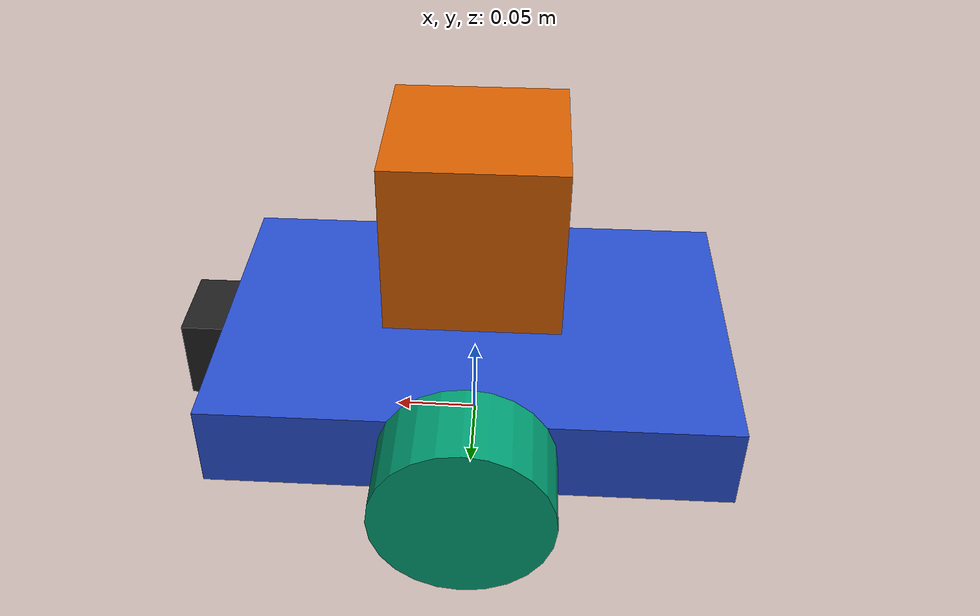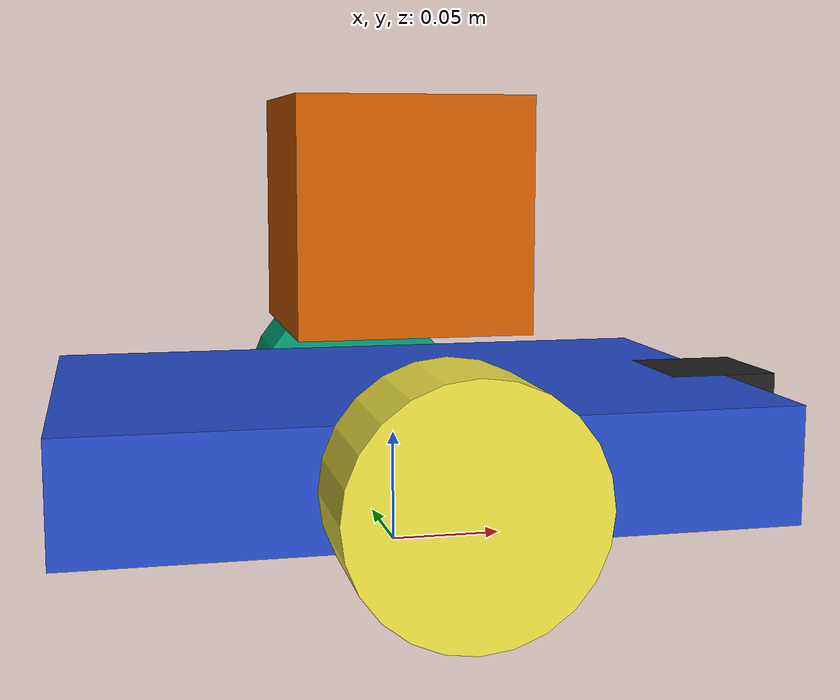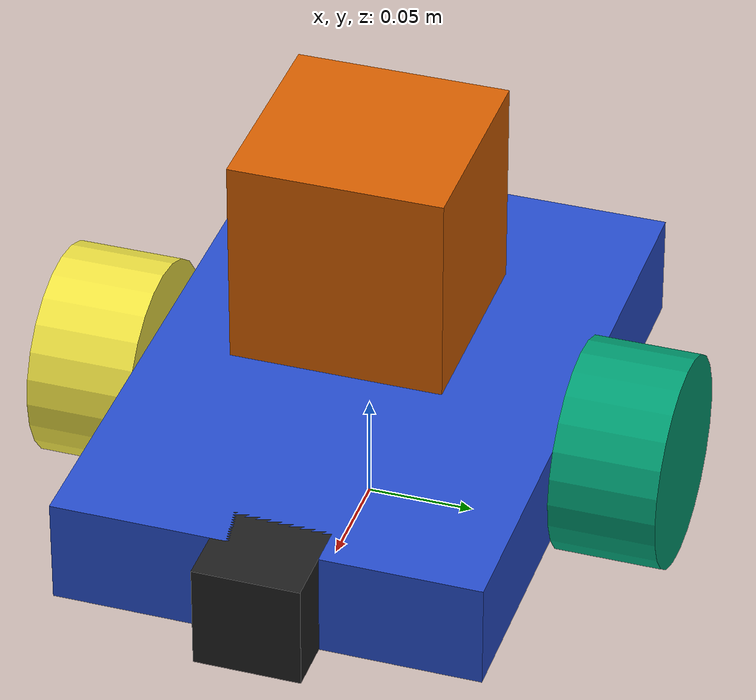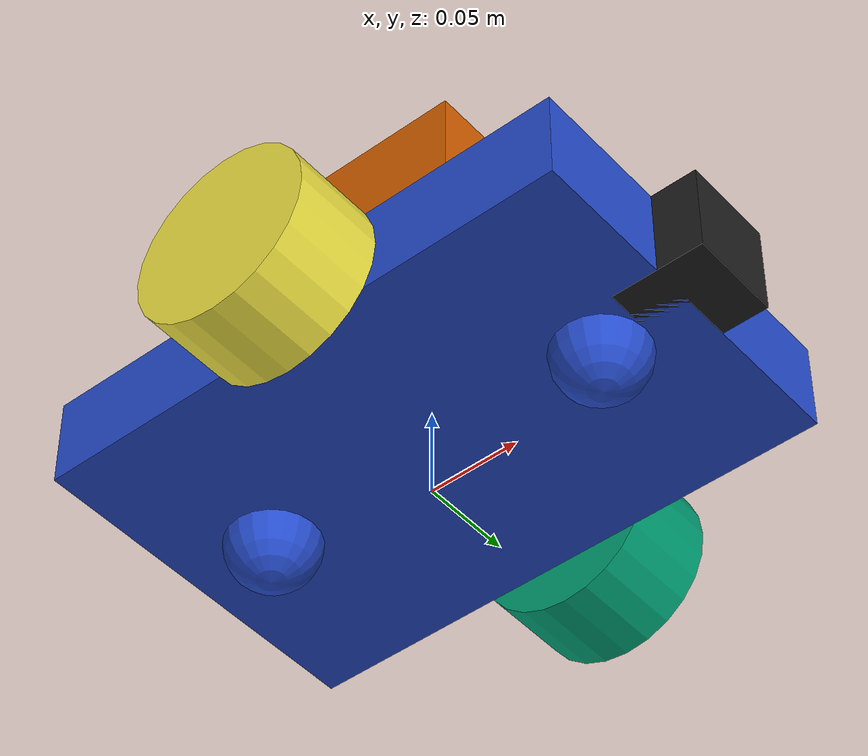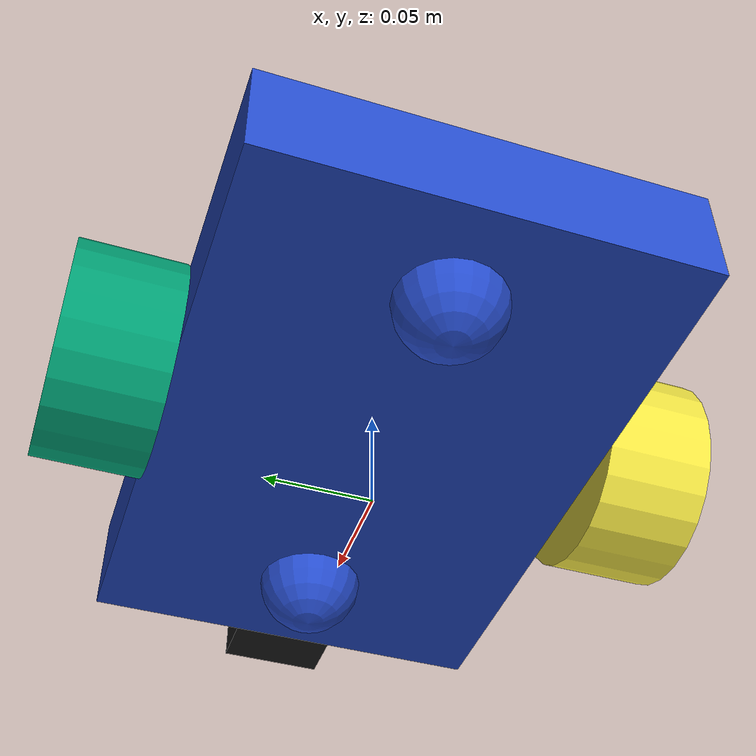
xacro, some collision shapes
<?xml version='1.0'?>
<robot name="my_robot" xmlns:xacro="http://www.ros.org/wiki/xacro">
  <xacro:include filename="$(find my_robot)/urdf/my_robot.gazebo" />
  <link name="robot_footprint">
  </link>

  <joint name="robot_footprint_joint" type="fixed">
    <origin xyz="0 0 0" rpy="0 0 0"/>
	<parent link="robot_footprint"/>
	<child link="chassis"/>
  </joint>

  <link name="chassis">
	<inertial>
	  <mass value="10"/>
          <origin xyz="0.0 0 0.0" rpy=" 0 0 0"/>
           <inertia
             ixx="0.1" ixy="0" ixz="0"
             iyy="0.1" iyz="0"
             izz="0.1"
          />
        </inertial>
	<visual>
	  <origin xyz="0 0 0.05" rpy="0 0 0"/>
	  <geometry>
	    <box size="0.3 0.2 0.05"/>
	  </geometry>
	</visual>
	<collision>
	  <origin xyz="0 0 0.05" rpy="0 0 0"/>
	  <geometry>
	    <box size="0.3 0.2 0.05"/>
	  </geometry>
	</collision>
	<visual>
	  <origin xyz="0.10 0 0.025" rpy="0 0 0"/>
	  <geometry>
	    <sphere radius ="0.025"/>
	  </geometry>
	</visual>
	<collision>
	  <origin xyz="0.10 0 0.025" rpy="0 0 0"/>
	  <geometry>
	    <sphere radius ="0.025"/>
	  </geometry>
	</collision>
	<visual>
	  <origin xyz="-0.10 0 0.025" rpy="0 0 0"/>
	  <geometry>
	    <sphere radius ="0.025"/>
	  </geometry>
	</visual>
	<collision>
	  <origin xyz="-0.10 0 0.025" rpy="0 0 0"/>
	  <geometry>
	    <sphere radius ="0.025"/>
	  </geometry>
	</collision>
  </link>

  <link name="left_wheel">
	<inertial>
	  <mass value="5"/>
          <origin xyz="0.0 0 0" rpy=" 0 0 0"/>
          <inertia
             ixx="0.1" ixy="0" ixz="0"
             iyy="0.1" iyz="0"
             izz="0.1"
          />
        </inertial>
	<visual>
	  <origin xyz="0 0 0" rpy="0 1.5707 1.5707"/>
	  <geometry>
	    <cylinder length="0.05" radius="0.05"/>
	  </geometry>
	</visual>
	<collision>
	  <origin xyz="0 0 0" rpy="0 1.5707 1.5707"/>
	  <geometry>
	    <cylinder length="0.05" radius="0.05"/>
	  </geometry>
	</collision>
  </link>

  <link name="right_wheel">
	<inertial>
	  <mass value="5"/>
          <origin xyz="0.0 0 0" rpy=" 0 0 0"/>
          <inertia
             ixx="0.1" ixy="0" ixz="0"
             iyy="0.1" iyz="0"
             izz="0.1"
          />
        </inertial>
	<visual>
	  <origin xyz="0 0 0" rpy="0 1.5707 1.5707"/>
	  <geometry>
	    <cylinder length="0.05" radius="0.05"/>
	  </geometry>
	</visual>
	<collision>
	  <origin xyz="0 0 0" rpy="0 1.5707 1.5707"/>
	  <geometry>
	    <cylinder length="0.05" radius="0.05"/>
	  </geometry>
	</collision>
  </link>

  <link name="camera">
	<inertial>
	  <mass value="0.0"/>
          <origin xyz="0.0 0 0.0" rpy=" 0 0 0"/>
           <inertia
             ixx="0.1e-6" ixy="0" ixz="0"
             iyy="0.1e-6" iyz="0"
             izz="0.1e-6"
          />
        </inertial>
	<visual>
	  <origin xyz="0 0 0" rpy="0 0 0"/>
	  <geometry>
	    <box size="0.05 0.05 0.05"/>
	  </geometry>
	</visual>
	<collision>
	  <origin xyz="0 0 0" rpy="0 0 0"/>
	  <geometry>
	    <box size="0.05 0.05 0.05"/>
	  </geometry>
	</collision>
  </link>

  <link name="hokuyo">
	<inertial>
	  <mass value="1e-5"/>
          <origin xyz="0.0 0 0.0" rpy=" 0 0 0"/>
           <inertia
             ixx="0.1e-6" ixy="0" ixz="0"
             iyy="0.1e-6" iyz="0"
             izz="0.1e-6"
          />
        </inertial>
	<visual>
	  <origin xyz="0 0 0" rpy="0 0 0"/>
	  <geometry>
            <mesh filename="package://my_robot/meshes/hokuyo.dae"/>
	  </geometry>
	</visual>
	<collision>
	  <origin xyz="0 0 0" rpy="0 0 0"/>
	  <geometry>
	    <box size="0.1 0.1 0.1"/>
	  </geometry>
	</collision>
  </link>

  <link name="camera_link_optical">
  </link>

  <joint type="continuous" name="left_wheel_hinge">
    <origin xyz = "0 0.125 0.05" rpy="0 0 0"/>
    <child link = "left_wheel"/>
    <parent link = "chassis"/>
    <axis xyz="0 1 0" rpy="0 0 0"/>
    <limit effort="10000" velocity="1000"/>
    <dynamics damping="0.1" friction="0.5"/>
  </joint>

  <joint type="continuous" name="right_wheel_hinge">
    <origin xyz = "0 -0.125 0.05" rpy="0 0 0"/>
    <child link = "right_wheel"/>
    <parent link = "chassis"/>
    <axis xyz="0 1 0" rpy="0 0 0"/>
    <limit effort="10000" velocity="1000"/>
    <dynamics damping="0.1" friction="0.5"/>
  </joint>

  <joint type="fixed" name="camera_joint">
    <origin xyz = "0.15 0 0.05" rpy="0 0 0"/>
    <child link = "camera"/>
    <parent link = "chassis"/>
    <axis xyz="1 0 0" rpy="0 0 0"/>
  </joint>

  <joint type="fixed" name="hokuyo_joint">
    <origin xyz = "0 0 0.15" rpy="0 0 0"/>
    <child link = "hokuyo"/>
    <parent link = "chassis"/>
    <axis xyz="0 0 1" rpy="0 0 0"/>
  </joint>

  <joint name="camera_optical_joint" type="fixed">
    <origin xyz="0 0 0" rpy="-1.5707 0 -1.5707"/>
    <parent link="camera"/>
    <child link="camera_link_optical"/>
  </joint>

  <gazebo reference="chassis">
   <material>Gazebo/Blue</material>
  </gazebo>

  <gazebo reference="camera">
   <material>Gazebo/Black</material>
  </gazebo>

</robot>
